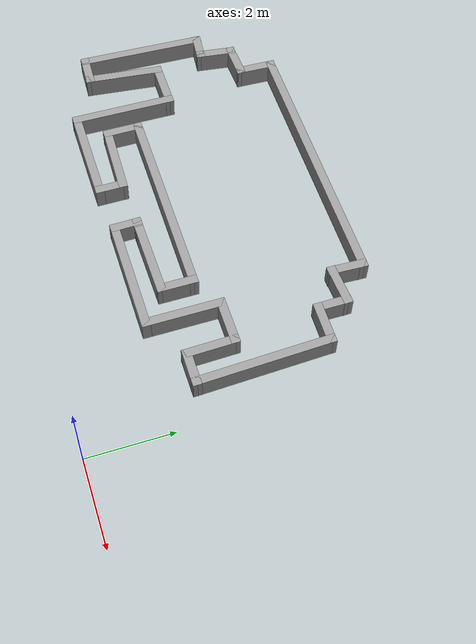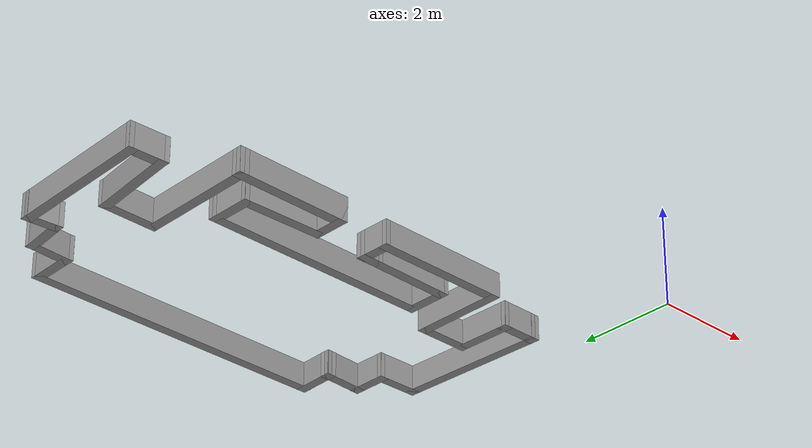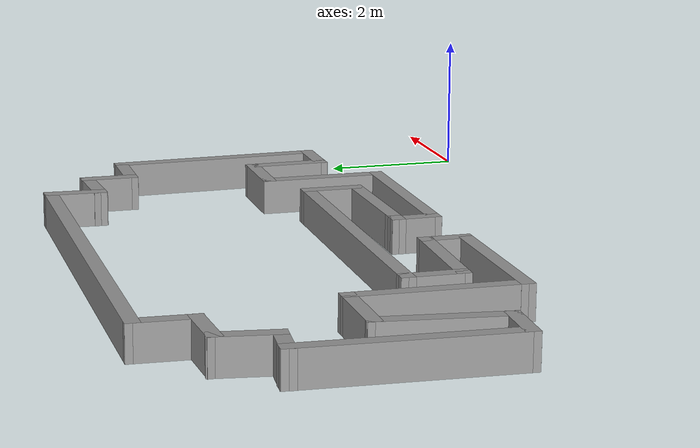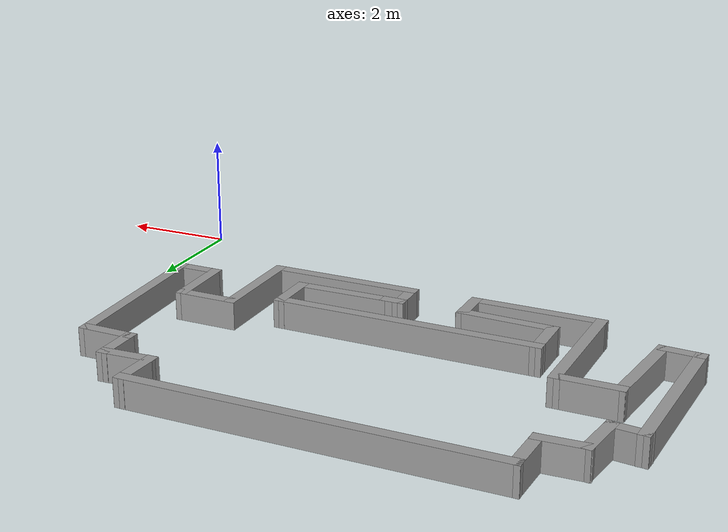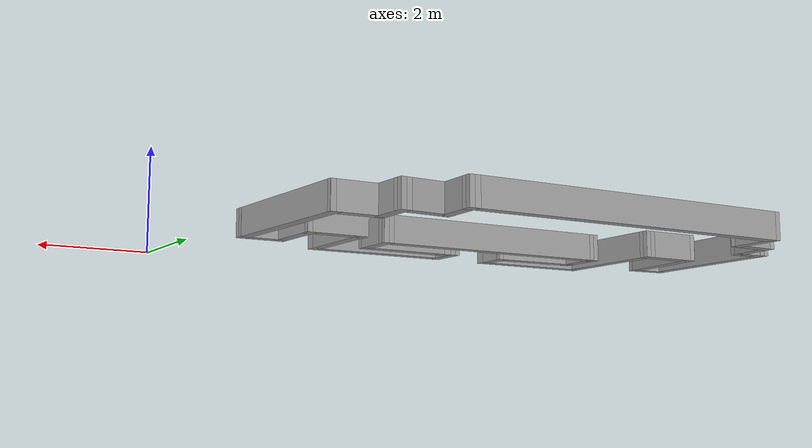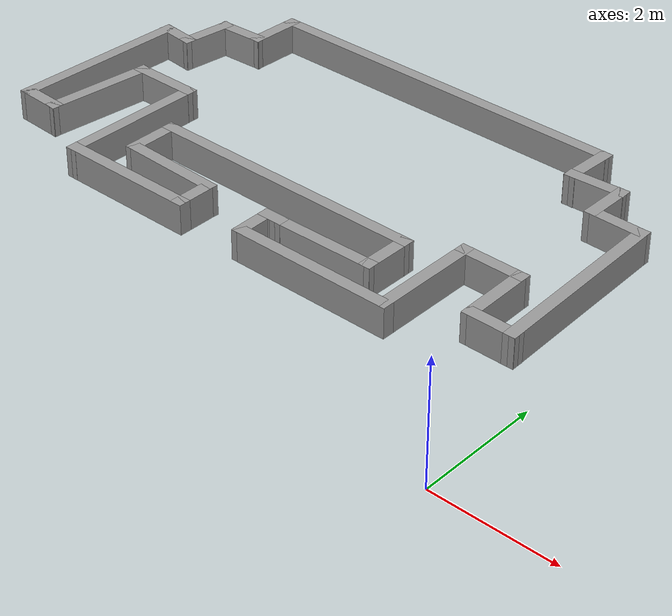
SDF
<?xml version='1.0'?>
<sdf version='1.4'>
  <model name='invader_map'>
    <link name='Wall_20'>
      <collision name='Wall_20_Collision'>
        <geometry>
          <box>
            <size>3.07785 0.2 0.5</size>
          </box>
        </geometry>
        <pose>0 0 0.25 0 -0 0</pose>
      </collision>
      <visual name='Wall_20_Visual'>
        <pose>0 0 0.25 0 -0 0</pose>
        <geometry>
          <box>
            <size>3.07785 0.2 0.5</size>
          </box>
        </geometry>
        <material>
          <script>
            <uri>file://media/materials/scripts/gazebo.material</uri>
            <name>Gazebo/Grey</name>
          </script>
        </material>
      </visual>
      <velocity_decay>
        <linear>0</linear>
        <angular>0</angular>
      </velocity_decay>
      <pose>-10.1318 4.04987 0 0 -0 1.53268</pose>
    </link>
    <link name='Wall_21'>
      <collision name='Wall_21_Collision'>
        <geometry>
          <box>
            <size>0.716014 0.2 0.5</size>
          </box>
        </geometry>
        <pose>0 0 0.25 0 -0 0</pose>
      </collision>
      <visual name='Wall_21_Visual'>
        <pose>0 0 0.25 0 -0 0</pose>
        <geometry>
          <box>
            <size>0.716014 0.2 0.5</size>
          </box>
        </geometry>
        <material>
          <script>
            <uri>file://media/materials/scripts/gazebo.material</uri>
            <name>Gazebo/Grey</name>
          </script>
        </material>
      </visual>
      <velocity_decay>
        <linear>0</linear>
        <angular>0</angular>
      </velocity_decay>
      <pose>-9.82035 5.46115 0 0 0 -0.103282</pose>
    </link>
    <link name='Wall_22'>
      <collision name='Wall_22_Collision'>
        <geometry>
          <box>
            <size>0.971061 0.2 0.5</size>
          </box>
        </geometry>
        <pose>0 0 0.25 0 -0 0</pose>
      </collision>
      <visual name='Wall_22_Visual'>
        <pose>0 0 0.25 0 -0 0</pose>
        <geometry>
          <box>
            <size>0.971061 0.2 0.5</size>
          </box>
        </geometry>
        <material>
          <script>
            <uri>file://media/materials/scripts/gazebo.material</uri>
            <name>Gazebo/Grey</name>
          </script>
        </material>
      </visual>
      <velocity_decay>
        <linear>0</linear>
        <angular>0</angular>
      </velocity_decay>
      <pose>-9.51339 5.81678 0 0 -0 1.4399</pose>
    </link>
    <link name='Wall_23'>
      <collision name='Wall_23_Collision'>
        <geometry>
          <box>
            <size>0.910606 0.2 0.5</size>
          </box>
        </geometry>
        <pose>0 0 0.25 0 -0 0</pose>
      </collision>
      <visual name='Wall_23_Visual'>
        <pose>0 0 0.25 0 -0 0</pose>
        <geometry>
          <box>
            <size>0.910606 0.2 0.5</size>
          </box>
        </geometry>
        <material>
          <script>
            <uri>file://media/materials/scripts/gazebo.material</uri>
            <name>Gazebo/Grey</name>
          </script>
        </material>
      </visual>
      <velocity_decay>
        <linear>0</linear>
        <angular>0</angular>
      </velocity_decay>
      <pose>-9.1081 6.21442 0 0 -0 0.043365</pose>
    </link>
    <link name='Wall_24'>
      <collision name='Wall_24_Collision'>
        <geometry>
          <box>
            <size>0.983494 0.2 0.5</size>
          </box>
        </geometry>
        <pose>0 0 0.25 0 -0 0</pose>
      </collision>
      <visual name='Wall_24_Visual'>
        <pose>0 0 0.25 0 -0 0</pose>
        <geometry>
          <box>
            <size>0.983494 0.2 0.5</size>
          </box>
        </geometry>
        <material>
          <script>
            <uri>file://media/materials/scripts/gazebo.material</uri>
            <name>Gazebo/Grey</name>
          </script>
        </material>
      </visual>
      <velocity_decay>
        <linear>0</linear>
        <angular>0</angular>
      </velocity_decay>
      <pose>-8.73884 6.62131 0 0 -0 1.53432</pose>
    </link>
    <link name='Wall_25'>
      <collision name='Wall_25_Collision'>
        <geometry>
          <box>
            <size>6.45429 0.2 0.5</size>
          </box>
        </geometry>
        <pose>0 0 0.25 0 -0 0</pose>
      </collision>
      <visual name='Wall_25_Visual'>
        <pose>0 0 0.25 0 -0 0</pose>
        <geometry>
          <box>
            <size>6.45429 0.2 0.5</size>
          </box>
        </geometry>
        <material>
          <script>
            <uri>file://media/materials/scripts/gazebo.material</uri>
            <name>Gazebo/Grey</name>
          </script>
        </material>
      </visual>
      <velocity_decay>
        <linear>0</linear>
        <angular>0</angular>
      </velocity_decay>
      <pose>-5.59741 7.01642 0 0 -0 0.001159</pose>
    </link>
    <link name='Wall_26'>
      <collision name='Wall_26_Collision'>
        <geometry>
          <box>
            <size>0.912371 0.2 0.5</size>
          </box>
        </geometry>
        <pose>0 0 0.25 0 -0 0</pose>
      </collision>
      <visual name='Wall_26_Visual'>
        <pose>0 0 0.25 0 -0 0</pose>
        <geometry>
          <box>
            <size>0.912371 0.2 0.5</size>
          </box>
        </geometry>
        <material>
          <script>
            <uri>file://media/materials/scripts/gazebo.material</uri>
            <name>Gazebo/Grey</name>
          </script>
        </material>
      </visual>
      <velocity_decay>
        <linear>0</linear>
        <angular>0</angular>
      </velocity_decay>
      <pose>-2.48357 6.6641 0 0 0 -1.60814</pose>
    </link>
    <link name='Wall_27'>
      <collision name='Wall_27_Collision'>
        <geometry>
          <box>
            <size>1 0.2 0.5</size>
          </box>
        </geometry>
        <pose>0 0 0.25 0 -0 0</pose>
      </collision>
      <visual name='Wall_27_Visual'>
        <pose>0 0 0.25 0 -0 0</pose>
        <geometry>
          <box>
            <size>1 0.2 0.5</size>
          </box>
        </geometry>
        <material>
          <script>
            <uri>file://media/materials/scripts/gazebo.material</uri>
            <name>Gazebo/Grey</name>
          </script>
        </material>
      </visual>
      <velocity_decay>
        <linear>0</linear>
        <angular>0</angular>
      </velocity_decay>
      <pose>-2.09756 6.33165 0 0 -0 0.058752</pose>
    </link>
    <link name='Wall_28'>
      <collision name='Wall_28_Collision'>
        <geometry>
          <box>
            <size>0.858851 0.2 0.5</size>
          </box>
        </geometry>
        <pose>0 0 0.25 0 -0 0</pose>
      </collision>
      <visual name='Wall_28_Visual'>
        <pose>0 0 0.25 0 -0 0</pose>
        <geometry>
          <box>
            <size>0.858851 0.2 0.5</size>
          </box>
        </geometry>
        <material>
          <script>
            <uri>file://media/materials/scripts/gazebo.material</uri>
            <name>Gazebo/Grey</name>
          </script>
        </material>
      </visual>
      <velocity_decay>
        <linear>0</linear>
        <angular>0</angular>
      </velocity_decay>
      <pose>-1.69825 6.02572 0 0 0 -1.5708</pose>
    </link>
    <link name='Wall_29'>
      <collision name='Wall_29_Collision'>
        <geometry>
          <box>
            <size>1.01605 0.2 0.5</size>
          </box>
        </geometry>
        <pose>0 0 0.25 0 -0 0</pose>
      </collision>
      <visual name='Wall_29_Visual'>
        <pose>0 0 0.25 0 -0 0</pose>
        <geometry>
          <box>
            <size>1.01605 0.2 0.5</size>
          </box>
        </geometry>
        <material>
          <script>
            <uri>file://media/materials/scripts/gazebo.material</uri>
            <name>Gazebo/Grey</name>
          </script>
        </material>
      </visual>
      <velocity_decay>
        <linear>0</linear>
        <angular>0</angular>
      </velocity_decay>
      <pose>-1.29027 5.69086 0 0 0 -0.013306</pose>
    </link>
    <link name='Wall_30'>
      <collision name='Wall_30_Collision'>
        <geometry>
          <box>
            <size>3.23285 0.2 0.5</size>
          </box>
        </geometry>
        <pose>0 0 0.25 0 -0 0</pose>
      </collision>
      <visual name='Wall_30_Visual'>
        <pose>0 0 0.25 0 -0 0</pose>
        <geometry>
          <box>
            <size>3.23285 0.2 0.5</size>
          </box>
        </geometry>
        <material>
          <script>
            <uri>file://media/materials/scripts/gazebo.material</uri>
            <name>Gazebo/Grey</name>
          </script>
        </material>
      </visual>
      <velocity_decay>
        <linear>0</linear>
        <angular>0</angular>
      </velocity_decay>
      <pose>-0.825858 4.17006 0 0 0 -1.53358</pose>
    </link>
    <link name='Wall_31'>
      <collision name='Wall_31_Collision'>
        <geometry>
          <box>
            <size>0.890434 0.2 0.5</size>
          </box>
        </geometry>
        <pose>0 0 0.25 0 -0 0</pose>
      </collision>
      <visual name='Wall_31_Visual'>
        <pose>0 0 0.25 0 -0 0</pose>
        <geometry>
          <box>
            <size>0.890434 0.2 0.5</size>
          </box>
        </geometry>
        <material>
          <script>
            <uri>file://media/materials/scripts/gazebo.material</uri>
            <name>Gazebo/Grey</name>
          </script>
        </material>
      </visual>
      <velocity_decay>
        <linear>0</linear>
        <angular>0</angular>
      </velocity_decay>
      <pose>-1.11466 2.65468 0 0 -0 3.14159</pose>
    </link>
    <link name='Wall_32'>
      <collision name='Wall_32_Collision'>
        <geometry>
          <box>
            <size>1.27215 0.2 0.5</size>
          </box>
        </geometry>
        <pose>0 0 0.25 0 -0 0</pose>
      </collision>
      <visual name='Wall_32_Visual'>
        <pose>0 0 0.25 0 -0 0</pose>
        <geometry>
          <box>
            <size>1.27215 0.2 0.5</size>
          </box>
        </geometry>
        <material>
          <script>
            <uri>file://media/materials/scripts/gazebo.material</uri>
            <name>Gazebo/Grey</name>
          </script>
        </material>
      </visual>
      <velocity_decay>
        <linear>0</linear>
        <angular>0</angular>
      </velocity_decay>
      <pose>-1.47249 3.19061 0 0 -0 1.59433</pose>
    </link>
    <link name='Wall_33'>
      <collision name='Wall_33_Collision'>
        <geometry>
          <box>
            <size>1.15423 0.2 0.5</size>
          </box>
        </geometry>
        <pose>0 0 0.25 0 -0 0</pose>
      </collision>
      <visual name='Wall_33_Visual'>
        <pose>0 0 0.25 0 -0 0</pose>
        <geometry>
          <box>
            <size>1.15423 0.2 0.5</size>
          </box>
        </geometry>
        <material>
          <script>
            <uri>file://media/materials/scripts/gazebo.material</uri>
            <name>Gazebo/Grey</name>
          </script>
        </material>
      </visual>
      <velocity_decay>
        <linear>0</linear>
        <angular>0</angular>
      </velocity_decay>
      <pose>-1.96222 3.72654 0 0 -0 3.14159</pose>
    </link>
    <link name='Wall_34'>
      <collision name='Wall_34_Collision'>
        <geometry>
          <box>
            <size>1.90241 0.2 0.5</size>
          </box>
        </geometry>
        <pose>0 0 0.25 0 -0 0</pose>
      </collision>
      <visual name='Wall_34_Visual'>
        <pose>0 0 0.25 0 -0 0</pose>
        <geometry>
          <box>
            <size>1.90241 0.2 0.5</size>
          </box>
        </geometry>
        <material>
          <script>
            <uri>file://media/materials/scripts/gazebo.material</uri>
            <name>Gazebo/Grey</name>
          </script>
        </material>
      </visual>
      <velocity_decay>
        <linear>0</linear>
        <angular>0</angular>
      </velocity_decay>
      <pose>-2.43934 2.87533 0 0 0 -1.5708</pose>
    </link>
    <link name='Wall_35'>
      <collision name='Wall_35_Collision'>
        <geometry>
          <box>
            <size>2.80017 0.2 0.5</size>
          </box>
        </geometry>
        <pose>0 0 0.25 0 -0 0</pose>
      </collision>
      <visual name='Wall_35_Visual'>
        <pose>0 0 0.25 0 -0 0</pose>
        <geometry>
          <box>
            <size>2.80017 0.2 0.5</size>
          </box>
        </geometry>
        <material>
          <script>
            <uri>file://media/materials/scripts/gazebo.material</uri>
            <name>Gazebo/Grey</name>
          </script>
        </material>
      </visual>
      <velocity_decay>
        <linear>0</linear>
        <angular>0</angular>
      </velocity_decay>
      <pose>-3.73942 2.02412 0 0 -0 3.14159</pose>
    </link>
    <link name='Wall_36'>
      <collision name='Wall_36_Collision'>
        <geometry>
          <box>
            <size>0.730769 0.2 0.5</size>
          </box>
        </geometry>
        <pose>0 0 0.25 0 -0 0</pose>
      </collision>
      <visual name='Wall_36_Visual'>
        <pose>0 0 0.25 0 -0 0</pose>
        <geometry>
          <box>
            <size>0.730769 0.2 0.5</size>
          </box>
        </geometry>
        <material>
          <script>
            <uri>file://media/materials/scripts/gazebo.material</uri>
            <name>Gazebo/Grey</name>
          </script>
        </material>
      </visual>
      <velocity_decay>
        <linear>0</linear>
        <angular>0</angular>
      </velocity_decay>
      <pose>-5.04453 2.28946 0 0 -0 1.58973</pose>
    </link>
    <link name='Wall_37'>
      <collision name='Wall_37_Collision'>
        <geometry>
          <box>
            <size>0.433489 0.2 0.5</size>
          </box>
        </geometry>
        <pose>0 0 0.25 0 -0 0</pose>
      </collision>
      <visual name='Wall_37_Visual'>
        <pose>0 0 0.25 0 -0 0</pose>
        <geometry>
          <box>
            <size>0.433489 0.2 0.5</size>
          </box>
        </geometry>
        <material>
          <script>
            <uri>file://media/materials/scripts/gazebo.material</uri>
            <name>Gazebo/Grey</name>
          </script>
        </material>
      </visual>
      <velocity_decay>
        <linear>0</linear>
        <angular>0</angular>
      </velocity_decay>
      <pose>-4.93281 2.5548 0 0 -0 0</pose>
    </link>
    <link name='Wall_38'>
      <collision name='Wall_38_Collision'>
        <geometry>
          <box>
            <size>1.83214 0.2 0.5</size>
          </box>
        </geometry>
        <pose>0 0 0.25 0 -0 0</pose>
      </collision>
      <visual name='Wall_38_Visual'>
        <pose>0 0 0.25 0 -0 0</pose>
        <geometry>
          <box>
            <size>1.83214 0.2 0.5</size>
          </box>
        </geometry>
        <material>
          <script>
            <uri>file://media/materials/scripts/gazebo.material</uri>
            <name>Gazebo/Grey</name>
          </script>
        </material>
      </visual>
      <velocity_decay>
        <linear>0</linear>
        <angular>0</angular>
      </velocity_decay>
      <pose>-4.0001 2.5681 0 0 -0 0.016298</pose>
    </link>
    <link name='Wall_39'>
      <collision name='Wall_39_Collision'>
        <geometry>
          <box>
            <size>0.935501 0.2 0.5</size>
          </box>
        </geometry>
        <pose>0 0 0.25 0 -0 0</pose>
      </collision>
      <visual name='Wall_39_Visual'>
        <pose>0 0 0.25 0 -0 0</pose>
        <geometry>
          <box>
            <size>0.935501 0.2 0.5</size>
          </box>
        </geometry>
        <material>
          <script>
            <uri>file://media/materials/scripts/gazebo.material</uri>
            <name>Gazebo/Grey</name>
          </script>
        </material>
      </visual>
      <velocity_decay>
        <linear>0</linear>
        <angular>0</angular>
      </velocity_decay>
      <pose>-3.18275 2.94915 0 0 -0 1.56701</pose>
    </link>
    <link name='Wall_40'>
      <collision name='Wall_40_Collision'>
        <geometry>
          <box>
            <size>4.78189 0.2 0.5</size>
          </box>
        </geometry>
        <pose>0 0 0.25 0 -0 0</pose>
      </collision>
      <visual name='Wall_40_Visual'>
        <pose>0 0 0.25 0 -0 0</pose>
        <geometry>
          <box>
            <size>4.78189 0.2 0.5</size>
          </box>
        </geometry>
        <material>
          <script>
            <uri>file://media/materials/scripts/gazebo.material</uri>
            <name>Gazebo/Grey</name>
          </script>
        </material>
      </visual>
      <velocity_decay>
        <linear>0</linear>
        <angular>0</angular>
      </velocity_decay>
      <pose>-5.4723 3.31689 0 0 -0 3.14159</pose>
    </link>
    <link name='Wall_41'>
      <collision name='Wall_41_Collision'>
        <geometry>
          <box>
            <size>0.947467 0.2 0.5</size>
          </box>
        </geometry>
        <pose>0 0 0.25 0 -0 0</pose>
      </collision>
      <visual name='Wall_41_Visual'>
        <pose>0 0 0.25 0 -0 0</pose>
        <geometry>
          <box>
            <size>0.947467 0.2 0.5</size>
          </box>
        </geometry>
        <material>
          <script>
            <uri>file://media/materials/scripts/gazebo.material</uri>
            <name>Gazebo/Grey</name>
          </script>
        </material>
      </visual>
      <velocity_decay>
        <linear>0</linear>
        <angular>0</angular>
      </velocity_decay>
      <pose>-7.76264 2.94316 0 0 0 -1.56918</pose>
    </link>
    <link name='Wall_42'>
      <collision name='Wall_42_Collision'>
        <geometry>
          <box>
            <size>1.76898 0.2 0.5</size>
          </box>
        </geometry>
        <pose>0 0 0.25 0 -0 0</pose>
      </collision>
      <visual name='Wall_42_Visual'>
        <pose>0 0 0.25 0 -0 0</pose>
        <geometry>
          <box>
            <size>1.76898 0.2 0.5</size>
          </box>
        </geometry>
        <material>
          <script>
            <uri>file://media/materials/scripts/gazebo.material</uri>
            <name>Gazebo/Grey</name>
          </script>
        </material>
      </visual>
      <velocity_decay>
        <linear>0</linear>
        <angular>0</angular>
      </velocity_decay>
      <pose>-6.97799 2.54283 0 0 0 -0.033914</pose>
    </link>
    <link name='Wall_43'>
      <collision name='Wall_43_Collision'>
        <geometry>
          <box>
            <size>0.753284 0.2 0.5</size>
          </box>
        </geometry>
        <pose>0 0 0.25 0 -0 0</pose>
      </collision>
      <visual name='Wall_43_Visual'>
        <pose>0 0 0.25 0 -0 0</pose>
        <geometry>
          <box>
            <size>0.753284 0.2 0.5</size>
          </box>
        </geometry>
        <material>
          <script>
            <uri>file://media/materials/scripts/gazebo.material</uri>
            <name>Gazebo/Grey</name>
          </script>
        </material>
      </visual>
      <velocity_decay>
        <linear>0</linear>
        <angular>0</angular>
      </velocity_decay>
      <pose>-6.19395 2.23958 0 0 0 -1.5708</pose>
    </link>
    <link name='Wall_44'>
      <collision name='Wall_44_Collision'>
        <geometry>
          <box>
            <size>2.4025 0.2 0.5</size>
          </box>
        </geometry>
        <pose>0 0 0.25 0 -0 0</pose>
      </collision>
      <visual name='Wall_44_Visual'>
        <pose>0 0 0.25 0 -0 0</pose>
        <geometry>
          <box>
            <size>2.4025 0.2 0.5</size>
          </box>
        </geometry>
        <material>
          <script>
            <uri>file://media/materials/scripts/gazebo.material</uri>
            <name>Gazebo/Grey</name>
          </script>
        </material>
      </visual>
      <velocity_decay>
        <linear>0</linear>
        <angular>0</angular>
      </velocity_decay>
      <pose>-7.2952 1.96294 0 0 -0 3.14159</pose>
    </link>
    <link name='Wall_45'>
      <collision name='Wall_45_Collision'>
        <geometry>
          <box>
            <size>2.49974 0.2 0.5</size>
          </box>
        </geometry>
        <pose>0 0 0.25 0 -0 0</pose>
      </collision>
      <visual name='Wall_45_Visual'>
        <pose>0 0 0.25 0 -0 0</pose>
        <geometry>
          <box>
            <size>2.49974 0.2 0.5</size>
          </box>
        </geometry>
        <material>
          <script>
            <uri>file://media/materials/scripts/gazebo.material</uri>
            <name>Gazebo/Grey</name>
          </script>
        </material>
      </visual>
      <velocity_decay>
        <linear>0</linear>
        <angular>0</angular>
      </velocity_decay>
      <pose>-8.38315 3.11274 0 0 -0 1.55923</pose>
    </link>
    <link name='Wall_46'>
      <collision name='Wall_46_Collision'>
        <geometry>
          <box>
            <size>1.21581 0.2 0.5</size>
          </box>
        </geometry>
        <pose>0 0 0.25 0 -0 0</pose>
      </collision>
      <visual name='Wall_46_Visual'>
        <pose>0 0 0.25 0 -0 0</pose>
        <geometry>
          <box>
            <size>1.21581 0.2 0.5</size>
          </box>
        </geometry>
        <material>
          <script>
            <uri>file://media/materials/scripts/gazebo.material</uri>
            <name>Gazebo/Grey</name>
          </script>
        </material>
      </visual>
      <velocity_decay>
        <linear>0</linear>
        <angular>0</angular>
      </velocity_decay>
      <pose>-8.87775 4.26253 0 0 -0 3.14159</pose>
    </link>
    <link name='Wall_47'>
      <collision name='Wall_47_Collision'>
        <geometry>
          <box>
            <size>1.89174 0.2 0.5</size>
          </box>
        </geometry>
        <pose>0 0 0.25 0 -0 0</pose>
      </collision>
      <visual name='Wall_47_Visual'>
        <pose>0 0 0.25 0 -0 0</pose>
        <geometry>
          <box>
            <size>1.89174 0.2 0.5</size>
          </box>
        </geometry>
        <material>
          <script>
            <uri>file://media/materials/scripts/gazebo.material</uri>
            <name>Gazebo/Grey</name>
          </script>
        </material>
      </visual>
      <velocity_decay>
        <linear>0</linear>
        <angular>0</angular>
      </velocity_decay>
      <pose>-9.48025 3.42196 0 0 0 -1.68286</pose>
    </link>
    <link name='Wall_48'>
      <collision name='Wall_48_Collision'>
        <geometry>
          <box>
            <size>0.812569 0.2 0.5</size>
          </box>
        </geometry>
        <pose>0 0 0.25 0 -0 0</pose>
      </collision>
      <visual name='Wall_48_Visual'>
        <pose>0 0 0.25 0 -0 0</pose>
        <geometry>
          <box>
            <size>0.812569 0.2 0.5</size>
          </box>
        </geometry>
        <material>
          <script>
            <uri>file://media/materials/scripts/gazebo.material</uri>
            <name>Gazebo/Grey</name>
          </script>
        </material>
      </visual>
      <velocity_decay>
        <linear>0</linear>
        <angular>0</angular>
      </velocity_decay>
      <pose>-9.88074 2.59669 0 0 -0 3.09163</pose>
    </link>
    <static>1</static>
  </model>
</sdf>
